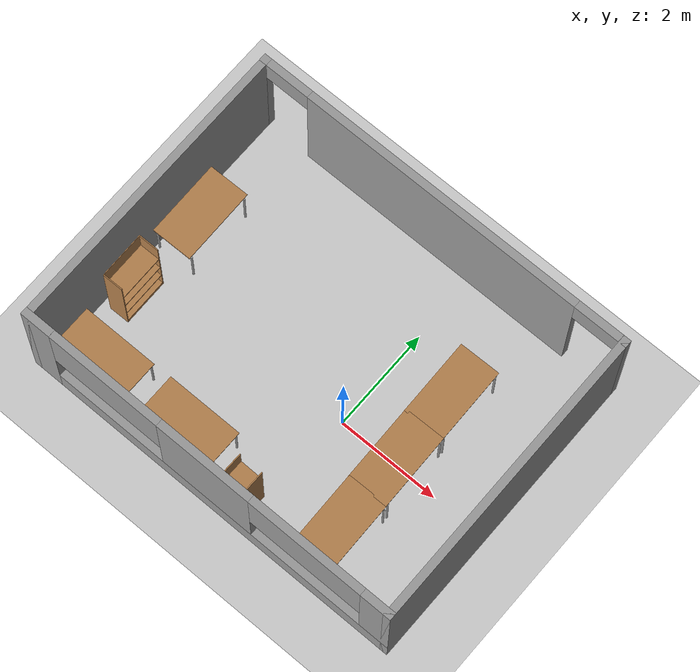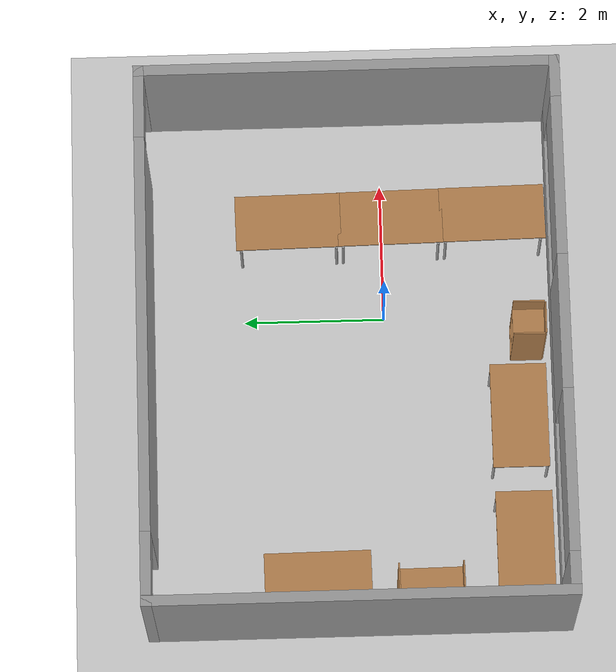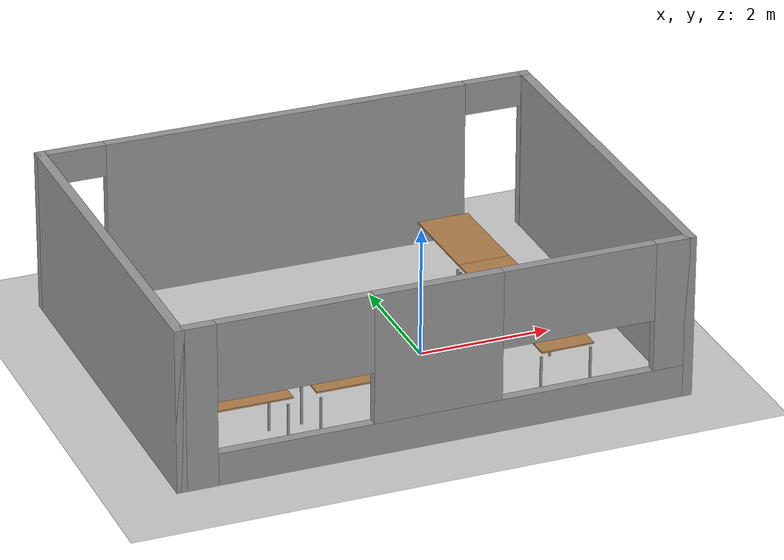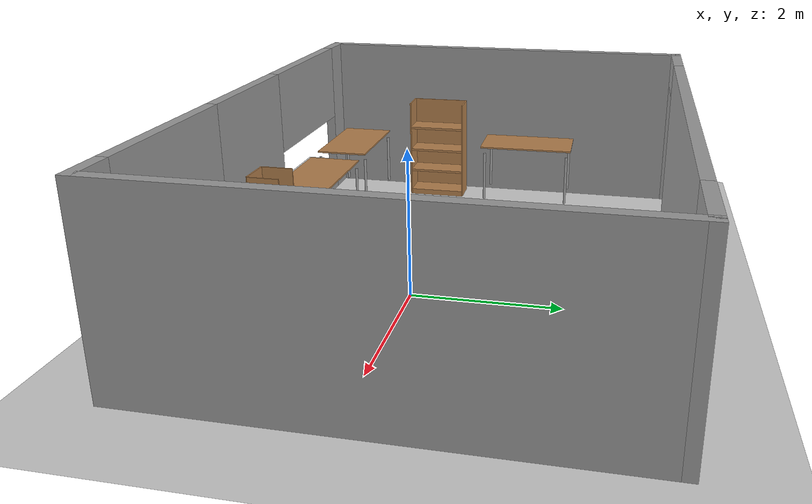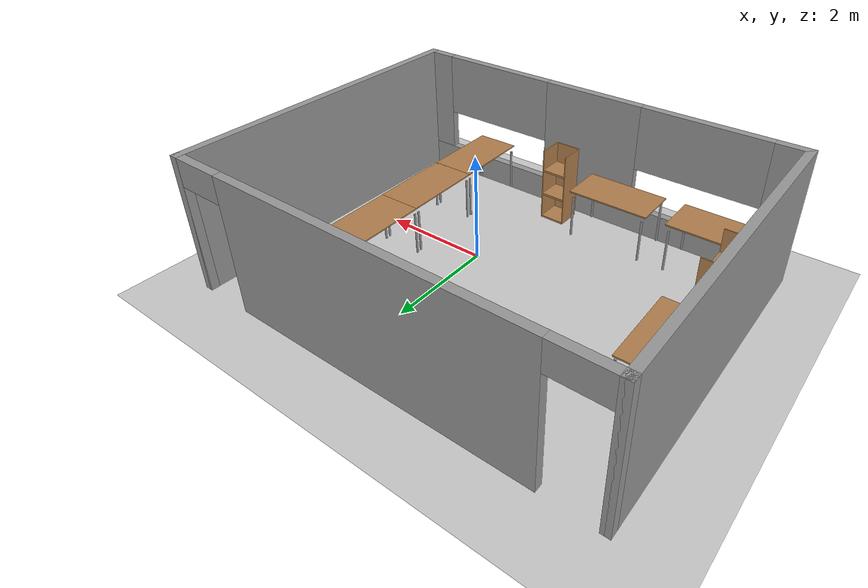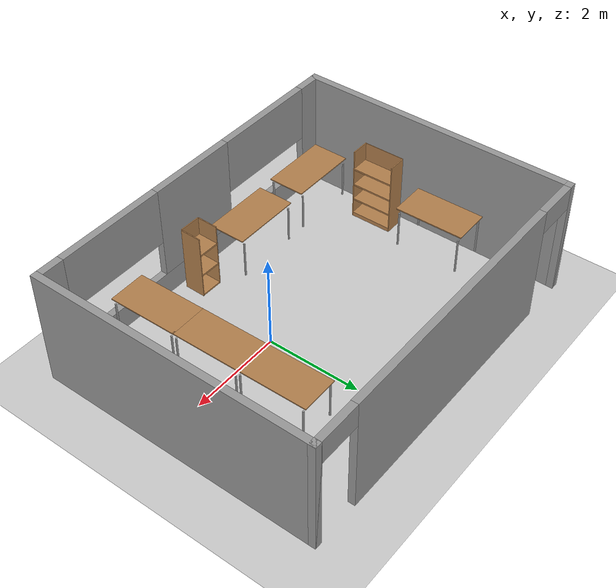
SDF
<sdf version="1.6">
 <world name="default">
  <include><uri>model://sun</uri></include>
  <light name="sun" type="directional">
   <pose>0 0 10 0 -0 0</pose>
   <diffuse>0.8 0.8 0.8 1</diffuse>
   <specular>0.2 0.2 0.2 1</specular>
   <attenuation>
    <range>1000</range>
    <constant>0.9</constant>
    <linear>0.01</linear>
    <quadratic>0.001</quadratic>
   </attenuation>
   <direction>-0.5 0.1 -0.9</direction>
  </light>
  <model name="ground_plane">
   <static>1</static>
   <link name="link">
    <collision name="collision">
     <geometry><plane><normal>0 0 1</normal><size>100 100</size></plane></geometry>
     <surface><friction><ode><mu>100</mu><mu2>50</mu2></ode></friction></surface>
    </collision>
    <visual name="visual">
     <cast_shadows>0</cast_shadows>
     <geometry><plane><normal>0 0 1</normal><size>100 100</size></plane></geometry>
     <material>
      <script><uri>file://media/materials/scripts/gazebo.material</uri><name>Gazebo/Grey</name></script>
     </material>
    </visual>
   </link>
  </model>
  <gravity>0 0 -9.8</gravity>
  <magnetic_field>6e-06 2.3e-05 -4.2e-05</magnetic_field>
  <atmosphere type="adiabatic"/>
  <physics name="default_physics" default="0" type="ode">
   <max_step_size>0.001</max_step_size>
   <real_time_factor>1</real_time_factor>
   <real_time_update_rate>1000</real_time_update_rate>
  </physics>
  <scene><ambient>0.4 0.4 0.4 1</ambient><background>0.7 0.7 0.7 1</background><shadows>1</shadows></scene>
  <audio><device>default</device></audio>
  <spherical_coordinates>
   <surface_model>EARTH_WGS84</surface_model>
   <latitude_deg>0</latitude_deg>
   <longitude_deg>0</longitude_deg>
   <elevation>0</elevation>
   <heading_deg>0</heading_deg>
  </spherical_coordinates>
  <model name="demo1">
   <pose>-0.7639 0.45231 0 0 -0 0</pose>
   <link name="Wall_0">
    <pose>-0 2.925 0 0 -0 0</pose>
    <visual name="Wall_0_Visual_0">
     <pose>-3.79757 0 1.25 0 -0 0</pose>
     <geometry><box><size>0.154861 0.15 2.5</size></box></geometry>
     <material>
      <script><uri>file://media/materials/scripts/gazebo.material</uri><name>Gazebo/Grey</name></script>
      <ambient>1 1 1 1</ambient>
     </material>
     <meta><layer>0</layer></meta>
    </visual>
    <collision name="Wall_0_Collision_0">
     <geometry><box><size>0.154861 0.15 2.5</size></box></geometry>
     <pose>-3.79757 0 1.25 0 -0 0</pose>
    </collision>
    <visual name="Wall_0_Visual_1">
     <pose>-0.00493 0 1.25 0 -0 0</pose>
     <geometry><box><size>5.64986 0.15 2.5</size></box></geometry>
     <material>
      <script><uri>file://media/materials/scripts/gazebo.material</uri><name>Gazebo/Grey</name></script>
      <ambient>1 1 1 1</ambient>
     </material>
     <meta><layer>0</layer></meta>
    </visual>
    <collision name="Wall_0_Collision_1">
     <geometry><box><size>5.64986 0.15 2.5</size></box></geometry>
     <pose>-0.00493 0 1.25 0 -0 0</pose>
    </collision>
    <visual name="Wall_0_Visual_2">
     <pose>3.7975 0 1.25 0 -0 0</pose>
     <geometry><box><size>0.155 0.15 2.5</size></box></geometry>
     <material>
      <script><uri>file://media/materials/scripts/gazebo.material</uri><name>Gazebo/Grey</name></script>
      <ambient>1 1 1 1</ambient>
     </material>
     <meta><layer>0</layer></meta>
    </visual>
    <collision name="Wall_0_Collision_2">
     <geometry><box><size>0.155 0.15 2.5</size></box></geometry>
     <pose>3.7975 0 1.25 0 -0 0</pose>
    </collision>
    <visual name="Wall_0_Visual_3">
     <pose>-3.275 0 2.25 0 -0 0</pose>
     <geometry><box><size>0.890278 0.15 0.5</size></box></geometry>
     <material>
      <script><uri>file://media/materials/scripts/gazebo.material</uri><name>Gazebo/Grey</name></script>
      <ambient>1 1 1 1</ambient>
     </material>
     <meta><layer>0</layer></meta>
    </visual>
    <collision name="Wall_0_Collision_3">
     <geometry><box><size>0.890278 0.15 0.5</size></box></geometry>
     <pose>-3.275 0 2.25 0 -0 0</pose>
    </collision>
    <visual name="Wall_0_Visual_4">
     <pose>3.27 0 2.25 0 -0 0</pose>
     <geometry><box><size>0.9 0.15 0.5</size></box></geometry>
     <material>
      <script><uri>file://media/materials/scripts/gazebo.material</uri><name>Gazebo/Grey</name></script>
      <ambient>1 1 1 1</ambient>
     </material>
     <meta><layer>0</layer></meta>
    </visual>
    <collision name="Wall_0_Collision_4">
     <geometry><box><size>0.9 0.15 0.5</size></box></geometry>
     <pose>3.27 0 2.25 0 -0 0</pose>
    </collision>
   </link>
   <link name="Wall_3">
    <collision name="Wall_3_Collision">
     <geometry><box><size>6 0.15 2.5</size></box></geometry>
     <pose>0 0 1.25 0 -0 0</pose>
    </collision>
    <visual name="Wall_3_Visual">
     <pose>0 0 1.25 0 -0 0</pose>
     <geometry><box><size>6 0.15 2.5</size></box></geometry>
     <material>
      <script><uri>file://media/materials/scripts/gazebo.material</uri><name>Gazebo/Grey</name></script>
      <ambient>1 1 1 1</ambient>
     </material>
     <meta><layer>0</layer></meta>
    </visual>
    <pose>-3.8 0 0 0 -0 -1.5708</pose>
   </link>
   <link name="Wall_4">
    <pose>-0 -2.925 0 0 -0 0</pose>
    <visual name="Wall_4_Visual_0">
     <pose>-3.56936 0 1.25 0 -0 0</pose>
     <geometry><box><size>0.611284 0.15 2.5</size></box></geometry>
     <material>
      <script><uri>file://media/materials/scripts/gazebo.material</uri><name>Gazebo/Grey</name></script>
      <ambient>1 1 1 1</ambient>
     </material>
     <meta><layer>0</layer></meta>
    </visual>
    <collision name="Wall_4_Collision_0">
     <geometry><box><size>0.611284 0.15 2.5</size></box></geometry>
     <pose>-3.56936 0 1.25 0 -0 0</pose>
    </collision>
    <visual name="Wall_4_Visual_1">
     <pose>0.305642 0 0.25 0 -0 0</pose>
     <geometry><box><size>7.13872 0.15 0.5</size></box></geometry>
     <material>
      <script><uri>file://media/materials/scripts/gazebo.material</uri><name>Gazebo/Grey</name></script>
      <ambient>1 1 1 1</ambient>
     </material>
     <meta><layer>0</layer></meta>
    </visual>
    <collision name="Wall_4_Collision_1">
     <geometry><box><size>7.13872 0.15 0.5</size></box></geometry>
     <pose>0.305642 0 0.25 0 -0 0</pose>
    </collision>
    <visual name="Wall_4_Visual_2">
     <pose>-0.007116 0 1.5 0 -0 0</pose>
     <geometry><box><size>1.92435 0.15 2</size></box></geometry>
     <material>
      <script><uri>file://media/materials/scripts/gazebo.material</uri><name>Gazebo/Grey</name></script>
      <ambient>1 1 1 1</ambient>
     </material>
     <meta><layer>0</layer></meta>
    </visual>
    <collision name="Wall_4_Collision_2">
     <geometry><box><size>1.92435 0.15 2</size></box></geometry>
     <pose>-0.007116 0 1.5 0 -0 0</pose>
    </collision>
    <visual name="Wall_4_Visual_3">
     <pose>3.56886 0 1.5 0 -0 0</pose>
     <geometry><box><size>0.612291 0.15 2</size></box></geometry>
     <material>
      <script><uri>file://media/materials/scripts/gazebo.material</uri><name>Gazebo/Grey</name></script>
      <ambient>1 1 1 1</ambient>
     </material>
     <meta><layer>0</layer></meta>
    </visual>
    <collision name="Wall_4_Collision_3">
     <geometry><box><size>0.612291 0.15 2</size></box></geometry>
     <pose>3.56886 0 1.5 0 -0 0</pose>
    </collision>
    <visual name="Wall_4_Visual_4">
     <pose>-2.1165 0 1.9 0 -0 0</pose>
     <geometry><box><size>2.29442 0.15 1.2</size></box></geometry>
     <material>
      <script><uri>file://media/materials/scripts/gazebo.material</uri><name>Gazebo/Grey</name></script>
      <ambient>1 1 1 1</ambient>
     </material>
     <meta><layer>0</layer></meta>
    </visual>
    <collision name="Wall_4_Collision_4">
     <geometry><box><size>2.29442 0.15 1.2</size></box></geometry>
     <pose>-2.1165 0 1.9 0 -0 0</pose>
    </collision>
    <visual name="Wall_4_Visual_5">
     <pose>2.10888 0 1.9 0 -0 0</pose>
     <geometry><box><size>2.30765 0.15 1.2</size></box></geometry>
     <material>
      <script><uri>file://media/materials/scripts/gazebo.material</uri><name>Gazebo/Grey</name></script>
      <ambient>1 1 1 1</ambient>
     </material>
     <meta><layer>0</layer></meta>
    </visual>
    <collision name="Wall_4_Collision_5">
     <geometry><box><size>2.30765 0.15 1.2</size></box></geometry>
     <pose>2.10888 0 1.9 0 -0 0</pose>
    </collision>
   </link>
   <link name="Wall_5">
    <collision name="Wall_5_Collision">
     <geometry><box><size>6 0.15 2.5</size></box></geometry>
     <pose>0 0 1.25 0 -0 0</pose>
    </collision>
    <visual name="Wall_5_Visual">
     <pose>0 0 1.25 0 -0 0</pose>
     <geometry><box><size>6 0.15 2.5</size></box></geometry>
     <material>
      <script><uri>file://media/materials/scripts/gazebo.material</uri><name>Gazebo/Grey</name></script>
      <ambient>1 1 1 1</ambient>
     </material>
     <meta><layer>0</layer></meta>
    </visual>
    <pose>3.8 0 0 0 -0 1.5708</pose>
   </link>
   <static>1</static>
  </model>
  <model name="table">
   <static>1</static>
   <link name="link">
    <collision name="surface">
     <pose>0 0 1 0 -0 0</pose>
     <geometry><box><size>1.5 0.8 0.024</size></box></geometry>
     <surface><friction><ode><mu>0.6</mu><mu2>0.6</mu2></ode></friction></surface>
    </collision>
    <visual name="visual1">
     <pose>0 0 1 0 -0 0</pose>
     <geometry><box><size>1.5 0.8 0.024</size></box></geometry>
     <material>
      <script><uri>file://media/materials/scripts/gazebo.material</uri><name>Gazebo/Wood</name></script>
     </material>
    </visual>
    <collision name="front_left_leg">
     <pose>0.68 0.38 0.5 0 -0 0</pose>
     <geometry><cylinder><radius>0.02</radius><length>0.8</length></cylinder></geometry>
    </collision>
    <visual name="front_left_leg">
     <pose>0.68 0.38 0.5 0 -0 0</pose>
     <geometry><cylinder><radius>0.02</radius><length>0.8</length></cylinder></geometry>
     <material>
      <script><uri>file://media/materials/scripts/gazebo.material</uri><name>Gazebo/Grey</name></script>
     </material>
    </visual>
    <collision name="front_right_leg">
     <pose>0.68 -0.38 0.5 0 -0 0</pose>
     <geometry><cylinder><radius>0.02</radius><length>0.8</length></cylinder></geometry>
    </collision>
    <visual name="front_right_leg">
     <pose>0.68 -0.38 0.5 0 -0 0</pose>
     <geometry><cylinder><radius>0.02</radius><length>0.8</length></cylinder></geometry>
     <material>
      <script><uri>file://media/materials/scripts/gazebo.material</uri><name>Gazebo/Grey</name></script>
     </material>
    </visual>
    <collision name="back_right_leg">
     <pose>-0.68 -0.38 0.5 0 -0 0</pose>
     <geometry><cylinder><radius>0.02</radius><length>0.8</length></cylinder></geometry>
    </collision>
    <visual name="back_right_leg">
     <pose>-0.68 -0.38 0.5 0 -0 0</pose>
     <geometry><cylinder><radius>0.02</radius><length>0.8</length></cylinder></geometry>
     <material>
      <script><uri>file://media/materials/scripts/gazebo.material</uri><name>Gazebo/Grey</name></script>
     </material>
    </visual>
    <collision name="back_left_leg">
     <pose>-0.68 0.38 0.5 0 -0 0</pose>
     <geometry><cylinder><radius>0.02</radius><length>0.8</length></cylinder></geometry>
    </collision>
    <visual name="back_left_leg">
     <pose>-0.68 0.38 0.5 0 -0 0</pose>
     <geometry><cylinder><radius>0.02</radius><length>0.8</length></cylinder></geometry>
     <material>
      <script><uri>file://media/materials/scripts/gazebo.material</uri><name>Gazebo/Grey</name></script>
     </material>
    </visual>
   </link>
   <pose>-4.02214 1.03331 0 0 -0 1.5822</pose>
  </model>
  <model name="bookshelf">
   <static>1</static>
   <link name="link">
    <inertial><mass>1</mass></inertial>
    <collision name="back">
     <pose>0 0.005 0.6 0 -0 0</pose>
     <geometry><box><size>0.9 0.01 2.04</size></box></geometry>
    </collision>
    <visual name="visual1">
     <pose>0 0.005 0.6 0 -0 0</pose>
     <geometry><box><size>0.9 0.01 2.04</size></box></geometry>
     <material>
      <script><uri>file://media/materials/scripts/gazebo.material</uri><name>Gazebo/Wood</name></script>
     </material>
    </visual>
    <collision name="left_side">
     <pose>0.45 -0.195 0.6 0 -0 0</pose>
     <geometry><box><size>0.02 0.4 2.04</size></box></geometry>
    </collision>
    <visual name="visual2">
     <pose>0.45 -0.195 0.6 0 -0 0</pose>
     <geometry><box><size>0.02 0.4 2.04</size></box></geometry>
     <material>
      <script><uri>file://media/materials/scripts/gazebo.material</uri><name>Gazebo/Wood</name></script>
     </material>
    </visual>
    <collision name="right_side">
     <pose>-0.45 -0.195 0.6 0 -0 0</pose>
     <geometry><box><size>0.02 0.4 2.04</size></box></geometry>
    </collision>
    <visual name="visual3">
     <pose>-0.45 -0.195 0.6 0 -0 0</pose>
     <geometry><box><size>0.02 0.4 2.04</size></box></geometry>
     <material>
      <script><uri>file://media/materials/scripts/gazebo.material</uri><name>Gazebo/Wood</name></script>
     </material>
    </visual>
    <collision name="bottom">
     <pose>0 -0.195 0.03 0 -0 0</pose>
     <geometry><box><size>0.88 0.4 0.102</size></box></geometry>
    </collision>
    <visual name="visual4">
     <pose>0 -0.195 0.03 0 -0 0</pose>
     <geometry><box><size>0.88 0.4 0.102</size></box></geometry>
     <material>
      <script><uri>file://media/materials/scripts/gazebo.material</uri><name>Gazebo/Wood</name></script>
     </material>
    </visual>
    <collision name="top">
     <pose>0 -0.195 1.19 0 -0 0</pose>
     <geometry><box><size>0.88 0.4 0.034</size></box></geometry>
    </collision>
    <visual name="visual5">
     <pose>0 -0.195 1.19 0 -0 0</pose>
     <geometry><box><size>0.88 0.4 0.034</size></box></geometry>
     <material>
      <script><uri>file://media/materials/scripts/gazebo.material</uri><name>Gazebo/Wood</name></script>
     </material>
    </visual>
    <collision name="low_shelf">
     <pose>0 -0.195 0.43 0 -0 0</pose>
     <geometry><box><size>0.88 0.4 0.034</size></box></geometry>
    </collision>
    <visual name="visual6">
     <pose>0 -0.195 0.43 0 -0 0</pose>
     <geometry><box><size>0.88 0.4 0.034</size></box></geometry>
     <material>
      <script><uri>file://media/materials/scripts/gazebo.material</uri><name>Gazebo/Wood</name></script>
     </material>
    </visual>
    <collision name="high_shelf">
     <pose>0 -0.195 0.8 0 -0 0</pose>
     <geometry><box><size>0.88 0.4 0.034</size></box></geometry>
    </collision>
    <visual name="visual7">
     <pose>0 -0.195 0.8 0 -0 0</pose>
     <geometry><box><size>0.88 0.4 0.034</size></box></geometry>
     <material>
      <script><uri>file://media/materials/scripts/gazebo.material</uri><name>Gazebo/Wood</name></script>
     </material>
    </visual>
   </link>
   <pose>-4.33031 -0.542125 0 0 -0 1.58021</pose>
  </model>
  <model name="table_0">
   <static>1</static>
   <link name="link">
    <collision name="surface">
     <pose>0 0 1 0 -0 0</pose>
     <geometry><box><size>1.5 0.8 0.024</size></box></geometry>
     <surface><friction><ode><mu>0.6</mu><mu2>0.6</mu2></ode></friction></surface>
    </collision>
    <visual name="visual1">
     <pose>0 0 1 0 -0 0</pose>
     <geometry><box><size>1.5 0.8 0.024</size></box></geometry>
     <material>
      <script><uri>file://media/materials/scripts/gazebo.material</uri><name>Gazebo/Wood</name></script>
     </material>
    </visual>
    <collision name="front_left_leg">
     <pose>0.68 0.38 0.5 0 -0 0</pose>
     <geometry><cylinder><radius>0.02</radius><length>0.8</length></cylinder></geometry>
    </collision>
    <visual name="front_left_leg">
     <pose>0.68 0.38 0.5 0 -0 0</pose>
     <geometry><cylinder><radius>0.02</radius><length>0.8</length></cylinder></geometry>
     <material>
      <script><uri>file://media/materials/scripts/gazebo.material</uri><name>Gazebo/Grey</name></script>
     </material>
    </visual>
    <collision name="front_right_leg">
     <pose>0.68 -0.38 0.5 0 -0 0</pose>
     <geometry><cylinder><radius>0.02</radius><length>0.8</length></cylinder></geometry>
    </collision>
    <visual name="front_right_leg">
     <pose>0.68 -0.38 0.5 0 -0 0</pose>
     <geometry><cylinder><radius>0.02</radius><length>0.8</length></cylinder></geometry>
     <material>
      <script><uri>file://media/materials/scripts/gazebo.material</uri><name>Gazebo/Grey</name></script>
     </material>
    </visual>
    <collision name="back_right_leg">
     <pose>-0.68 -0.38 0.5 0 -0 0</pose>
     <geometry><cylinder><radius>0.02</radius><length>0.8</length></cylinder></geometry>
    </collision>
    <visual name="back_right_leg">
     <pose>-0.68 -0.38 0.5 0 -0 0</pose>
     <geometry><cylinder><radius>0.02</radius><length>0.8</length></cylinder></geometry>
     <material>
      <script><uri>file://media/materials/scripts/gazebo.material</uri><name>Gazebo/Grey</name></script>
     </material>
    </visual>
    <collision name="back_left_leg">
     <pose>-0.68 0.38 0.5 0 -0 0</pose>
     <geometry><cylinder><radius>0.02</radius><length>0.8</length></cylinder></geometry>
    </collision>
    <visual name="back_left_leg">
     <pose>-0.68 0.38 0.5 0 -0 0</pose>
     <geometry><cylinder><radius>0.02</radius><length>0.8</length></cylinder></geometry>
     <material>
      <script><uri>file://media/materials/scripts/gazebo.material</uri><name>Gazebo/Grey</name></script>
     </material>
    </visual>
   </link>
   <pose>-3.57702 -1.88064 0 0 -0 0</pose>
  </model>
  <model name="table_1">
   <static>1</static>
   <link name="link">
    <collision name="surface">
     <pose>0 0 1 0 -0 0</pose>
     <geometry><box><size>1.5 0.8 0.024</size></box></geometry>
     <surface><friction><ode><mu>0.6</mu><mu2>0.6</mu2></ode></friction></surface>
    </collision>
    <visual name="visual1">
     <pose>0 0 1 0 -0 0</pose>
     <geometry><box><size>1.5 0.8 0.024</size></box></geometry>
     <material>
      <script><uri>file://media/materials/scripts/gazebo.material</uri><name>Gazebo/Wood</name></script>
     </material>
    </visual>
    <collision name="front_left_leg">
     <pose>0.68 0.38 0.5 0 -0 0</pose>
     <geometry><cylinder><radius>0.02</radius><length>0.8</length></cylinder></geometry>
    </collision>
    <visual name="front_left_leg">
     <pose>0.68 0.38 0.5 0 -0 0</pose>
     <geometry><cylinder><radius>0.02</radius><length>0.8</length></cylinder></geometry>
     <material>
      <script><uri>file://media/materials/scripts/gazebo.material</uri><name>Gazebo/Grey</name></script>
     </material>
    </visual>
    <collision name="front_right_leg">
     <pose>0.68 -0.38 0.5 0 -0 0</pose>
     <geometry><cylinder><radius>0.02</radius><length>0.8</length></cylinder></geometry>
    </collision>
    <visual name="front_right_leg">
     <pose>0.68 -0.38 0.5 0 -0 0</pose>
     <geometry><cylinder><radius>0.02</radius><length>0.8</length></cylinder></geometry>
     <material>
      <script><uri>file://media/materials/scripts/gazebo.material</uri><name>Gazebo/Grey</name></script>
     </material>
    </visual>
    <collision name="back_right_leg">
     <pose>-0.68 -0.38 0.5 0 -0 0</pose>
     <geometry><cylinder><radius>0.02</radius><length>0.8</length></cylinder></geometry>
    </collision>
    <visual name="back_right_leg">
     <pose>-0.68 -0.38 0.5 0 -0 0</pose>
     <geometry><cylinder><radius>0.02</radius><length>0.8</length></cylinder></geometry>
     <material>
      <script><uri>file://media/materials/scripts/gazebo.material</uri><name>Gazebo/Grey</name></script>
     </material>
    </visual>
    <collision name="back_left_leg">
     <pose>-0.68 0.38 0.5 0 -0 0</pose>
     <geometry><cylinder><radius>0.02</radius><length>0.8</length></cylinder></geometry>
    </collision>
    <visual name="back_left_leg">
     <pose>-0.68 0.38 0.5 0 -0 0</pose>
     <geometry><cylinder><radius>0.02</radius><length>0.8</length></cylinder></geometry>
     <material>
      <script><uri>file://media/materials/scripts/gazebo.material</uri><name>Gazebo/Grey</name></script>
     </material>
    </visual>
   </link>
   <pose>-1.72792 -1.86626 0 0 -0 0</pose>
  </model>
  <model name="table_2">
   <static>1</static>
   <link name="link">
    <collision name="surface">
     <pose>0 0 1 0 -0 0</pose>
     <geometry><box><size>1.5 0.8 0.024</size></box></geometry>
     <surface><friction><ode><mu>0.6</mu><mu2>0.6</mu2></ode></friction></surface>
    </collision>
    <visual name="visual1">
     <pose>0 0 1 0 -0 0</pose>
     <geometry><box><size>1.5 0.8 0.024</size></box></geometry>
     <material>
      <script><uri>file://media/materials/scripts/gazebo.material</uri><name>Gazebo/Wood</name></script>
     </material>
    </visual>
    <collision name="front_left_leg">
     <pose>0.68 0.38 0.5 0 -0 0</pose>
     <geometry><cylinder><radius>0.02</radius><length>0.8</length></cylinder></geometry>
    </collision>
    <visual name="front_left_leg">
     <pose>0.68 0.38 0.5 0 -0 0</pose>
     <geometry><cylinder><radius>0.02</radius><length>0.8</length></cylinder></geometry>
     <material>
      <script><uri>file://media/materials/scripts/gazebo.material</uri><name>Gazebo/Grey</name></script>
     </material>
    </visual>
    <collision name="front_right_leg">
     <pose>0.68 -0.38 0.5 0 -0 0</pose>
     <geometry><cylinder><radius>0.02</radius><length>0.8</length></cylinder></geometry>
    </collision>
    <visual name="front_right_leg">
     <pose>0.68 -0.38 0.5 0 -0 0</pose>
     <geometry><cylinder><radius>0.02</radius><length>0.8</length></cylinder></geometry>
     <material>
      <script><uri>file://media/materials/scripts/gazebo.material</uri><name>Gazebo/Grey</name></script>
     </material>
    </visual>
    <collision name="back_right_leg">
     <pose>-0.68 -0.38 0.5 0 -0 0</pose>
     <geometry><cylinder><radius>0.02</radius><length>0.8</length></cylinder></geometry>
    </collision>
    <visual name="back_right_leg">
     <pose>-0.68 -0.38 0.5 0 -0 0</pose>
     <geometry><cylinder><radius>0.02</radius><length>0.8</length></cylinder></geometry>
     <material>
      <script><uri>file://media/materials/scripts/gazebo.material</uri><name>Gazebo/Grey</name></script>
     </material>
    </visual>
    <collision name="back_left_leg">
     <pose>-0.68 0.38 0.5 0 -0 0</pose>
     <geometry><cylinder><radius>0.02</radius><length>0.8</length></cylinder></geometry>
    </collision>
    <visual name="back_left_leg">
     <pose>-0.68 0.38 0.5 0 -0 0</pose>
     <geometry><cylinder><radius>0.02</radius><length>0.8</length></cylinder></geometry>
     <material>
      <script><uri>file://media/materials/scripts/gazebo.material</uri><name>Gazebo/Grey</name></script>
     </material>
    </visual>
   </link>
   <pose>1.26367 -1.58367 0 0 0 -1.55624</pose>
  </model>
  <model name="table_2_clone">
   <static>1</static>
   <link name="link">
    <collision name="surface">
     <pose>0 0 1 0 -0 0</pose>
     <geometry><box><size>1.5 0.8 0.024</size></box></geometry>
     <surface><friction><ode><mu>0.6</mu><mu2>0.6</mu2></ode></friction></surface>
    </collision>
    <visual name="visual1">
     <pose>0 0 1 0 -0 0</pose>
     <geometry><box><size>1.5 0.8 0.024</size></box></geometry>
     <material>
      <script><uri>file://media/materials/scripts/gazebo.material</uri><name>Gazebo/Wood</name></script>
     </material>
    </visual>
    <collision name="front_left_leg">
     <pose>0.68 0.38 0.5 0 -0 0</pose>
     <geometry><cylinder><radius>0.02</radius><length>0.8</length></cylinder></geometry>
    </collision>
    <visual name="front_left_leg">
     <pose>0.68 0.38 0.5 0 -0 0</pose>
     <geometry><cylinder><radius>0.02</radius><length>0.8</length></cylinder></geometry>
     <material>
      <script><uri>file://media/materials/scripts/gazebo.material</uri><name>Gazebo/Grey</name></script>
     </material>
    </visual>
    <collision name="front_right_leg">
     <pose>0.68 -0.38 0.5 0 -0 0</pose>
     <geometry><cylinder><radius>0.02</radius><length>0.8</length></cylinder></geometry>
    </collision>
    <visual name="front_right_leg">
     <pose>0.68 -0.38 0.5 0 -0 0</pose>
     <geometry><cylinder><radius>0.02</radius><length>0.8</length></cylinder></geometry>
     <material>
      <script><uri>file://media/materials/scripts/gazebo.material</uri><name>Gazebo/Grey</name></script>
     </material>
    </visual>
    <collision name="back_right_leg">
     <pose>-0.68 -0.38 0.5 0 -0 0</pose>
     <geometry><cylinder><radius>0.02</radius><length>0.8</length></cylinder></geometry>
    </collision>
    <visual name="back_right_leg">
     <pose>-0.68 -0.38 0.5 0 -0 0</pose>
     <geometry><cylinder><radius>0.02</radius><length>0.8</length></cylinder></geometry>
     <material>
      <script><uri>file://media/materials/scripts/gazebo.material</uri><name>Gazebo/Grey</name></script>
     </material>
    </visual>
    <collision name="back_left_leg">
     <pose>-0.68 0.38 0.5 0 -0 0</pose>
     <geometry><cylinder><radius>0.02</radius><length>0.8</length></cylinder></geometry>
    </collision>
    <visual name="back_left_leg">
     <pose>-0.68 0.38 0.5 0 -0 0</pose>
     <geometry><cylinder><radius>0.02</radius><length>0.8</length></cylinder></geometry>
     <material>
      <script><uri>file://media/materials/scripts/gazebo.material</uri><name>Gazebo/Grey</name></script>
     </material>
    </visual>
   </link>
   <pose>1.23893 -0.118647 0 0 0 -1.55624</pose>
  </model>
  <model name="table_2_clone_0">
   <static>1</static>
   <link name="link">
    <collision name="surface">
     <pose>0 0 1 0 -0 0</pose>
     <geometry><box><size>1.5 0.8 0.024</size></box></geometry>
     <surface><friction><ode><mu>0.6</mu><mu2>0.6</mu2></ode></friction></surface>
    </collision>
    <visual name="visual1">
     <pose>0 0 1 0 -0 0</pose>
     <geometry><box><size>1.5 0.8 0.024</size></box></geometry>
     <material>
      <script><uri>file://media/materials/scripts/gazebo.material</uri><name>Gazebo/Wood</name></script>
     </material>
    </visual>
    <collision name="front_left_leg">
     <pose>0.68 0.38 0.5 0 -0 0</pose>
     <geometry><cylinder><radius>0.02</radius><length>0.8</length></cylinder></geometry>
    </collision>
    <visual name="front_left_leg">
     <pose>0.68 0.38 0.5 0 -0 0</pose>
     <geometry><cylinder><radius>0.02</radius><length>0.8</length></cylinder></geometry>
     <material>
      <script><uri>file://media/materials/scripts/gazebo.material</uri><name>Gazebo/Grey</name></script>
     </material>
    </visual>
    <collision name="front_right_leg">
     <pose>0.68 -0.38 0.5 0 -0 0</pose>
     <geometry><cylinder><radius>0.02</radius><length>0.8</length></cylinder></geometry>
    </collision>
    <visual name="front_right_leg">
     <pose>0.68 -0.38 0.5 0 -0 0</pose>
     <geometry><cylinder><radius>0.02</radius><length>0.8</length></cylinder></geometry>
     <material>
      <script><uri>file://media/materials/scripts/gazebo.material</uri><name>Gazebo/Grey</name></script>
     </material>
    </visual>
    <collision name="back_right_leg">
     <pose>-0.68 -0.38 0.5 0 -0 0</pose>
     <geometry><cylinder><radius>0.02</radius><length>0.8</length></cylinder></geometry>
    </collision>
    <visual name="back_right_leg">
     <pose>-0.68 -0.38 0.5 0 -0 0</pose>
     <geometry><cylinder><radius>0.02</radius><length>0.8</length></cylinder></geometry>
     <material>
      <script><uri>file://media/materials/scripts/gazebo.material</uri><name>Gazebo/Grey</name></script>
     </material>
    </visual>
    <collision name="back_left_leg">
     <pose>-0.68 0.38 0.5 0 -0 0</pose>
     <geometry><cylinder><radius>0.02</radius><length>0.8</length></cylinder></geometry>
    </collision>
    <visual name="back_left_leg">
     <pose>-0.68 0.38 0.5 0 -0 0</pose>
     <geometry><cylinder><radius>0.02</radius><length>0.8</length></cylinder></geometry>
     <material>
      <script><uri>file://media/materials/scripts/gazebo.material</uri><name>Gazebo/Grey</name></script>
     </material>
    </visual>
   </link>
   <pose>1.21464 1.3361 0 0 0 -1.55624</pose>
  </model>
  <model name="cabinet">
   <static>1</static>
   <link name="cabinet_bottom_plate">
    <inertial>
     <pose>0 0 -1 0 -0 0</pose>
     <inertia><ixx>2.05</ixx><ixy>0</ixy><ixz>0</ixz><iyy>2.05</iyy><iyz>0</iyz><izz>2.05</izz></inertia>
     <mass>25</mass>
    </inertial>
    <collision name="cabinet_bottom_plate_geom">
     <pose>0 0 0.01 0 -0 0</pose>
     <geometry><box><size>0.45 0.45 0.036</size></box></geometry>
    </collision>
    <visual name="cabinet_bottom_plate_geom_visual">
     <pose>0 0 0.01 0 -0 0</pose>
     <geometry><box><size>0.45 0.45 0.036</size></box></geometry>
     <material>
      <script><uri>file://media/materials/scripts/gazebo.material</uri><name>Gazebo/Wood</name></script>
     </material>
    </visual>
    <collision name="cabinet_bottom_plate_geom_cabinet_back_plate">
     <pose>0.235 0 0.51 0 -0 0</pose>
     <geometry><box><size>0.02 0.45 1.836</size></box></geometry>
    </collision>
    <visual name="cabinet_bottom_plate_geom_cabinet_back_plate_visual">
     <pose>0.235 0 0.51 0 -0 0</pose>
     <geometry><box><size>0.02 0.45 1.836</size></box></geometry>
     <material>
      <script><uri>file://media/materials/scripts/gazebo.material</uri><name>Gazebo/Wood</name></script>
     </material>
    </visual>
    <collision name="cabinet_bottom_plate_geom_cabinet_left_plate">
     <pose>0 0.235 0.51 0 -0 0</pose>
     <geometry><box><size>0.45 0.02 1.836</size></box></geometry>
    </collision>
    <visual name="cabinet_bottom_plate_geom_cabinet_left_plate_visual">
     <pose>0 0.235 0.51 0 -0 0</pose>
     <geometry><box><size>0.45 0.02 1.836</size></box></geometry>
     <material>
      <script><uri>file://media/materials/scripts/gazebo.material</uri><name>Gazebo/Wood</name></script>
     </material>
    </visual>
    <collision name="cabinet_bottom_plate_geom_cabinet_middle_plate">
     <pose>0 0 0.51 0 -0 0</pose>
     <geometry><box><size>0.45 0.45 0.036</size></box></geometry>
    </collision>
    <visual name="cabinet_bottom_plate_geom_cabinet_middle_plate_visual">
     <pose>0 0 0.51 0 -0 0</pose>
     <geometry><box><size>0.45 0.45 0.036</size></box></geometry>
     <material>
      <script><uri>file://media/materials/scripts/gazebo.material</uri><name>Gazebo/Wood</name></script>
     </material>
    </visual>
    <collision name="cabinet_bottom_plate_geom_cabinet_right_plate">
     <pose>0 -0.235 0.51 0 -0 0</pose>
     <geometry><box><size>0.45 0.02 1.836</size></box></geometry>
    </collision>
    <visual name="cabinet_bottom_plate_geom_cabinet_right_plate_visual">
     <pose>0 -0.235 0.51 0 -0 0</pose>
     <geometry><box><size>0.45 0.02 1.836</size></box></geometry>
     <material>
      <script><uri>file://media/materials/scripts/gazebo.material</uri><name>Gazebo/Wood</name></script>
     </material>
    </visual>
    <collision name="cabinet_bottom_plate_geom_cabinet_top_plate">
     <pose>0 0 1.01 0 -0 0</pose>
     <geometry><box><size>0.45 0.45 0.036</size></box></geometry>
    </collision>
    <visual name="cabinet_bottom_plate_geom_cabinet_top_plate_visual">
     <pose>0 0 1.01 0 -0 0</pose>
     <geometry><box><size>0.45 0.45 0.036</size></box></geometry>
     <material>
      <script><uri>file://media/materials/scripts/gazebo.material</uri><name>Gazebo/Wood</name></script>
     </material>
    </visual>
   </link>
   <pose>-0.41162 -2.03845 0 0 0 -1.58429</pose>
  </model>
 </world>
</sdf>
